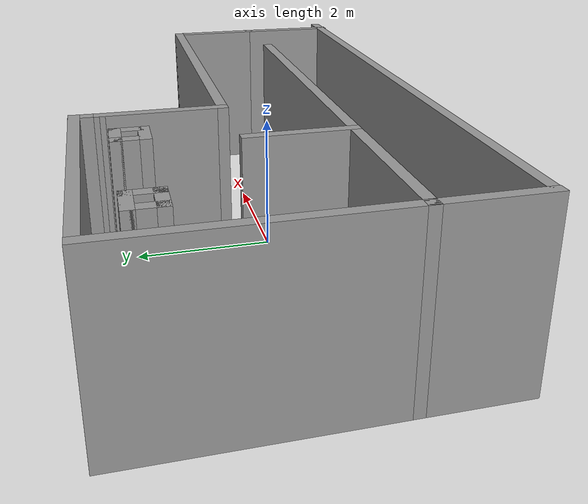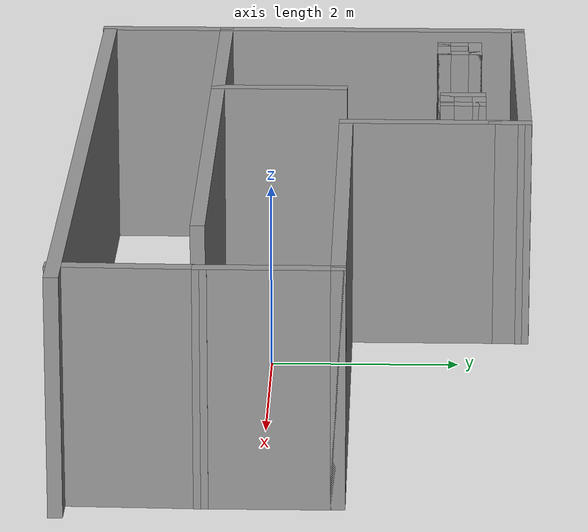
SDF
<?xml version='1.0'?>
<sdf version='1.7'>
  <model name='room_2'>
    <pose>0.005 0.345126 0 0 -0 0</pose>
    <link name='Wall_13'>
      <collision name='Wall_13_Collision'>
        <geometry>
          <box>
            <size>5 0.15 2.5</size>
          </box>
        </geometry>
        <pose>0 0 1.25 0 -0 0</pose>
      </collision>
      <visual name='Wall_13_Visual'>
        <pose>0 0 1.25 0 -0 0</pose>
        <geometry>
          <box>
            <size>5 0.15 2.5</size>
          </box>
        </geometry>
        <material>
          <script>
            <uri>file://media/materials/scripts/gazebo.material</uri>
            <name>Gazebo/Grey</name>
          </script>
          <ambient>1 1 1 1</ambient>
        </material>
        <meta>
          <layer>0</layer>
        </meta>
      </visual>
      <pose>1.66 0.434874 0 0 -0 0</pose>
    </link>
    <link name='Wall_14'>
      <collision name='Wall_14_Collision'>
        <geometry>
          <box>
            <size>1.5 0.15 2.5</size>
          </box>
        </geometry>
        <pose>0 0 1.25 0 -0 0</pose>
      </collision>
      <visual name='Wall_14_Visual'>
        <pose>0 0 1.25 0 -0 0</pose>
        <geometry>
          <box>
            <size>1.5 0.15 2.5</size>
          </box>
        </geometry>
        <material>
          <script>
            <uri>file://media/materials/scripts/gazebo.material</uri>
            <name>Gazebo/Grey</name>
          </script>
          <ambient>1 1 1 1</ambient>
        </material>
        <meta>
          <layer>0</layer>
        </meta>
      </visual>
      <pose>4.085 -0.240126 0 0 -0 -1.5708</pose>
    </link>
    <link name='Wall_16'>
      <collision name='Wall_16_Collision'>
        <geometry>
          <box>
            <size>7.25 0.15 2.5</size>
          </box>
        </geometry>
        <pose>0 0 1.25 0 -0 0</pose>
      </collision>
      <visual name='Wall_16_Visual'>
        <pose>0 0 1.25 0 -0 0</pose>
        <geometry>
          <box>
            <size>7.25 0.15 2.5</size>
          </box>
        </geometry>
        <material>
          <script>
            <uri>file://media/materials/scripts/gazebo.material</uri>
            <name>Gazebo/Grey</name>
          </script>
          <ambient>1 1 1 1</ambient>
        </material>
        <meta>
          <layer>0</layer>
        </meta>
      </visual>
      <pose>-0.805 -0.995126 0 0 -0 3.14159</pose>
    </link>
    <link name='Wall_17'>
      <collision name='Wall_17_Collision'>
        <geometry>
          <box>
            <size>1.5 0.15 2.5</size>
          </box>
        </geometry>
        <pose>0 0 1.25 0 -0 0</pose>
      </collision>
      <visual name='Wall_17_Visual'>
        <pose>0 0 1.25 0 -0 0</pose>
        <geometry>
          <box>
            <size>1.5 0.15 2.5</size>
          </box>
        </geometry>
        <material>
          <script>
            <uri>file://media/materials/scripts/gazebo.material</uri>
            <name>Gazebo/Grey</name>
          </script>
          <ambient>1 1 1 1</ambient>
        </material>
        <meta>
          <layer>0</layer>
        </meta>
      </visual>
      <pose>-4.355 -1.67013 0 0 -0 -1.5708</pose>
    </link>
    <link name='Wall_21'>
      <collision name='Wall_21_Collision'>
        <geometry>
          <box>
            <size>1.59055 0.15 2.5</size>
          </box>
        </geometry>
        <pose>0 0 1.25 0 -0 0</pose>
      </collision>
      <visual name='Wall_21_Visual'>
        <pose>0 0 1.25 0 -0 0</pose>
        <geometry>
          <box>
            <size>1.59055 0.15 2.5</size>
          </box>
        </geometry>
        <material>
          <script>
            <uri>file://media/materials/scripts/gazebo.material</uri>
            <name>Gazebo/Grey</name>
          </script>
          <ambient>1 1 1 1</ambient>
        </material>
        <meta>
          <layer>0</layer>
        </meta>
      </visual>
      <pose>4.065 -1.63513 0 0 -0 1.54303</pose>
    </link>
    <link name='Wall_23'>
      <collision name='Wall_23_Collision'>
        <geometry>
          <box>
            <size>1.75 0.15 2.5</size>
          </box>
        </geometry>
        <pose>0 0 1.25 0 -0 0</pose>
      </collision>
      <visual name='Wall_23_Visual'>
        <pose>0 0 1.25 0 -0 0</pose>
        <geometry>
          <box>
            <size>1.75 0.15 2.5</size>
          </box>
        </geometry>
        <material>
          <script>
            <uri>file://media/materials/scripts/gazebo.material</uri>
            <name>Gazebo/Grey</name>
          </script>
          <ambient>1 1 1 1</ambient>
        </material>
        <meta>
          <layer>0</layer>
        </meta>
      </visual>
      <pose>-0.765 1.23487 0 0 -0 1.5708</pose>
    </link>
    <link name='Wall_27'>
      <collision name='Wall_27_Collision'>
        <geometry>
          <box>
            <size>1.5 0.15 2.5</size>
          </box>
        </geometry>
        <pose>0 0 1.25 0 -0 0</pose>
      </collision>
      <visual name='Wall_27_Visual'>
        <pose>0 0 1.25 0 -0 0</pose>
        <geometry>
          <box>
            <size>1.5 0.15 2.5</size>
          </box>
        </geometry>
        <material>
          <script>
            <uri>file://media/materials/scripts/gazebo.material</uri>
            <name>Gazebo/Grey</name>
          </script>
          <ambient>1 1 1 1</ambient>
        </material>
        <meta>
          <layer>0</layer>
        </meta>
      </visual>
      <pose>-2.025 -0.320126 0 0 -0 1.5708</pose>
    </link>
    <link name='Wall_29'>
      <collision name='Wall_29_Collision'>
        <geometry>
          <box>
            <size>3.5 0.15 2.5</size>
          </box>
        </geometry>
        <pose>0 0 1.25 0 -0 0</pose>
      </collision>
      <visual name='Wall_29_Visual'>
        <pose>0 0 1.25 0 -0 0</pose>
        <geometry>
          <box>
            <size>3.5 0.15 2.5</size>
          </box>
        </geometry>
        <material>
          <script>
            <uri>file://media/materials/scripts/gazebo.material</uri>
            <name>Gazebo/Grey</name>
          </script>
          <ambient>1 1 1 1</ambient>
        </material>
        <meta>
          <layer>0</layer>
        </meta>
      </visual>
      <pose>-4.355 0.679874 0 0 -0 1.5708</pose>
    </link>
    <link name='Wall_3'>
      <collision name='Wall_3_Collision'>
        <geometry>
          <box>
            <size>8.75 0.15 2.5</size>
          </box>
        </geometry>
        <pose>0 0 1.25 0 -0 0</pose>
      </collision>
      <visual name='Wall_3_Visual'>
        <pose>0 0 1.25 0 -0 0</pose>
        <geometry>
          <box>
            <size>8.75 0.15 2.5</size>
          </box>
        </geometry>
        <material>
          <script>
            <uri>file://media/materials/scripts/gazebo.material</uri>
            <name>Gazebo/Grey</name>
          </script>
          <ambient>1 1 1 1</ambient>
        </material>
        <meta>
          <layer>0</layer>
        </meta>
      </visual>
      <pose>0.055 -2.33513 0 0 -0 0</pose>
    </link>
    <link name='Wall_31'>
      <collision name='Wall_31_Collision'>
        <geometry>
          <box>
            <size>3.75 0.15 2.5</size>
          </box>
        </geometry>
        <pose>0 0 1.25 0 -0 0</pose>
      </collision>
      <visual name='Wall_31_Visual'>
        <pose>0 0 1.25 0 -0 0</pose>
        <geometry>
          <box>
            <size>3.75 0.15 2.5</size>
          </box>
        </geometry>
        <material>
          <script>
            <uri>file://media/materials/scripts/gazebo.material</uri>
            <name>Gazebo/Grey</name>
          </script>
          <ambient>1 1 1 1</ambient>
        </material>
        <meta>
          <layer>0</layer>
        </meta>
      </visual>
      <pose>-2.555 2.35487 0 0 -0 0</pose>
    </link>
    <link name='Wall_32'>
      <collision name='Wall_32_Collision'>
        <geometry>
          <box>
            <size>0.470156 0.15 2.5</size>
          </box>
        </geometry>
        <pose>0 0 1.25 0 -0 0</pose>
      </collision>
      <visual name='Wall_32_Visual'>
        <pose>0 0 1.25 0 -0 0</pose>
        <geometry>
          <box>
            <size>0.470156 0.15 2.5</size>
          </box>
        </geometry>
        <material>
          <script>
            <uri>file://media/materials/scripts/gazebo.material</uri>
            <name>Gazebo/Grey</name>
          </script>
          <ambient>1 1 1 1</ambient>
        </material>
        <meta>
          <layer>0</layer>
        </meta>
      </visual>
      <pose>-0.76 2.19487 0 0 -0 -1.60204</pose>
    </link>
    <link name='Wall_34'>
      <collision name='Wall_34_Collision'>
        <geometry>
          <box>
            <size>0.5 0.15 2.5</size>
          </box>
        </geometry>
        <pose>0 0 1.25 0 -0 0</pose>
      </collision>
      <visual name='Wall_34_Visual'>
        <pose>0 0 1.25 0 -0 0</pose>
        <geometry>
          <box>
            <size>0.5 0.15 2.5</size>
          </box>
        </geometry>
        <material>
          <script>
            <uri>file://media/materials/scripts/gazebo.material</uri>
            <name>Gazebo/Grey</name>
          </script>
          <ambient>1 1 1 1</ambient>
        </material>
        <meta>
          <layer>0</layer>
        </meta>
      </visual>
      <pose>-3.6 1.85487 0 0 -0 0</pose>
    </link>
    <link name='Wall_35'>
      <collision name='Wall_35_Collision'>
        <geometry>
          <box>
            <size>0.5 0.15 2.5</size>
          </box>
        </geometry>
        <pose>0 0 1.25 0 -0 0</pose>
      </collision>
      <visual name='Wall_35_Visual'>
        <pose>0 0 1.25 0 -0 0</pose>
        <geometry>
          <box>
            <size>0.5 0.15 2.5</size>
          </box>
        </geometry>
        <material>
          <script>
            <uri>file://media/materials/scripts/gazebo.material</uri>
            <name>Gazebo/Grey</name>
          </script>
          <ambient>1 1 1 1</ambient>
        </material>
        <meta>
          <layer>0</layer>
        </meta>
      </visual>
      <pose>-3.425 1.67987 0 0 -0 -1.5708</pose>
    </link>
    <link name='Wall_36'>
      <collision name='Wall_36_Collision'>
        <geometry>
          <box>
            <size>0.5 0.15 2.5</size>
          </box>
        </geometry>
        <pose>0 0 1.25 0 -0 0</pose>
      </collision>
      <visual name='Wall_36_Visual'>
        <pose>0 0 1.25 0 -0 0</pose>
        <geometry>
          <box>
            <size>0.5 0.15 2.5</size>
          </box>
        </geometry>
        <material>
          <script>
            <uri>file://media/materials/scripts/gazebo.material</uri>
            <name>Gazebo/Grey</name>
          </script>
          <ambient>1 1 1 1</ambient>
        </material>
        <meta>
          <layer>0</layer>
        </meta>
      </visual>
      <pose>-3.6 1.50487 0 0 -0 3.14159</pose>
    </link>
    <link name='Wall_37'>
      <collision name='Wall_37_Collision'>
        <geometry>
          <box>
            <size>0.5 0.15 2.5</size>
          </box>
        </geometry>
        <pose>0 0 1.25 0 -0 0</pose>
      </collision>
      <visual name='Wall_37_Visual'>
        <pose>0 0 1.25 0 -0 0</pose>
        <geometry>
          <box>
            <size>0.5 0.15 2.5</size>
          </box>
        </geometry>
        <material>
          <script>
            <uri>file://media/materials/scripts/gazebo.material</uri>
            <name>Gazebo/Grey</name>
          </script>
          <ambient>1 1 1 1</ambient>
        </material>
        <meta>
          <layer>0</layer>
        </meta>
      </visual>
      <pose>-3.775 1.67987 0 0 -0 1.5708</pose>
    </link>
    <link name='Wall_39'>
      <collision name='Wall_39_Collision'>
        <geometry>
          <box>
            <size>0.5 0.15 2.5</size>
          </box>
        </geometry>
        <pose>0 0 1.25 0 -0 0</pose>
      </collision>
      <visual name='Wall_39_Visual'>
        <pose>0 0 1.25 0 -0 0</pose>
        <geometry>
          <box>
            <size>0.5 0.15 2.5</size>
          </box>
        </geometry>
        <material>
          <script>
            <uri>file://media/materials/scripts/gazebo.material</uri>
            <name>Gazebo/Grey</name>
          </script>
          <ambient>1 1 1 1</ambient>
        </material>
        <meta>
          <layer>0</layer>
        </meta>
      </visual>
      <pose>-1.61 1.87487 0 0 -0 0</pose>
    </link>
    <link name='Wall_40'>
      <collision name='Wall_40_Collision'>
        <geometry>
          <box>
            <size>0.5 0.15 2.5</size>
          </box>
        </geometry>
        <pose>0 0 1.25 0 -0 0</pose>
      </collision>
      <visual name='Wall_40_Visual'>
        <pose>0 0 1.25 0 -0 0</pose>
        <geometry>
          <box>
            <size>0.5 0.15 2.5</size>
          </box>
        </geometry>
        <material>
          <script>
            <uri>file://media/materials/scripts/gazebo.material</uri>
            <name>Gazebo/Grey</name>
          </script>
          <ambient>1 1 1 1</ambient>
        </material>
        <meta>
          <layer>0</layer>
        </meta>
      </visual>
      <pose>-1.435 1.69987 0 0 -0 -1.5708</pose>
    </link>
    <link name='Wall_41'>
      <collision name='Wall_41_Collision'>
        <geometry>
          <box>
            <size>0.5 0.15 2.5</size>
          </box>
        </geometry>
        <pose>0 0 1.25 0 -0 0</pose>
      </collision>
      <visual name='Wall_41_Visual'>
        <pose>0 0 1.25 0 -0 0</pose>
        <geometry>
          <box>
            <size>0.5 0.15 2.5</size>
          </box>
        </geometry>
        <material>
          <script>
            <uri>file://media/materials/scripts/gazebo.material</uri>
            <name>Gazebo/Grey</name>
          </script>
          <ambient>1 1 1 1</ambient>
        </material>
        <meta>
          <layer>0</layer>
        </meta>
      </visual>
      <pose>-1.61 1.52487 0 0 -0 3.14159</pose>
    </link>
    <link name='Wall_42'>
      <collision name='Wall_42_Collision'>
        <geometry>
          <box>
            <size>0.5 0.15 2.5</size>
          </box>
        </geometry>
        <pose>0 0 1.25 0 -0 0</pose>
      </collision>
      <visual name='Wall_42_Visual'>
        <pose>0 0 1.25 0 -0 0</pose>
        <geometry>
          <box>
            <size>0.5 0.15 2.5</size>
          </box>
        </geometry>
        <material>
          <script>
            <uri>file://media/materials/scripts/gazebo.material</uri>
            <name>Gazebo/Grey</name>
          </script>
          <ambient>1 1 1 1</ambient>
        </material>
        <meta>
          <layer>0</layer>
        </meta>
      </visual>
      <pose>-1.785 1.69987 0 0 -0 1.5708</pose>
    </link>
    <static>1</static>
  </model>
</sdf>
